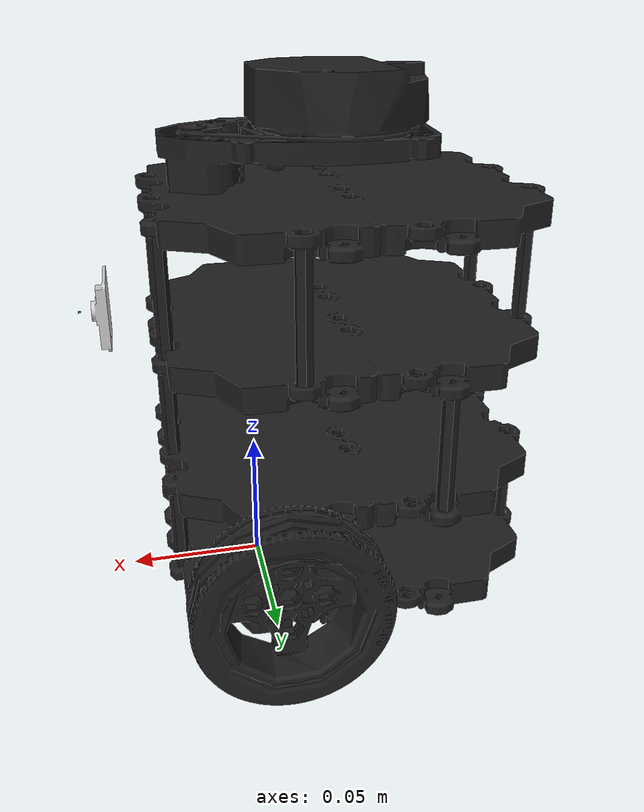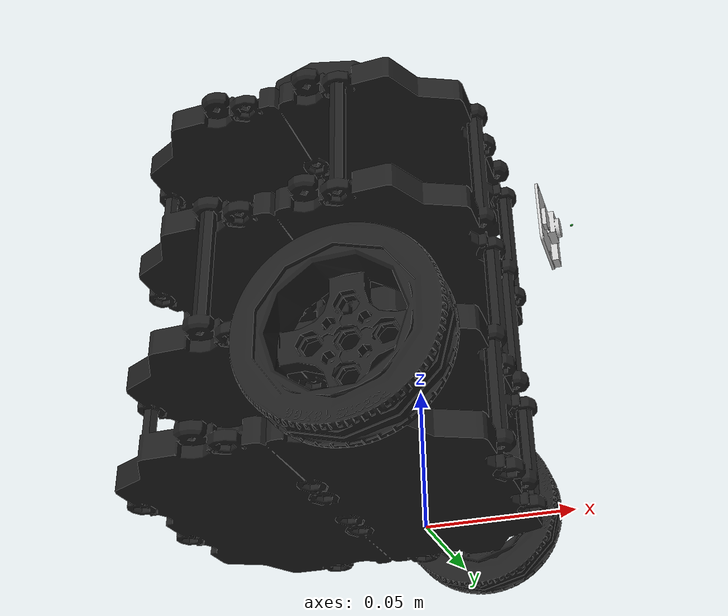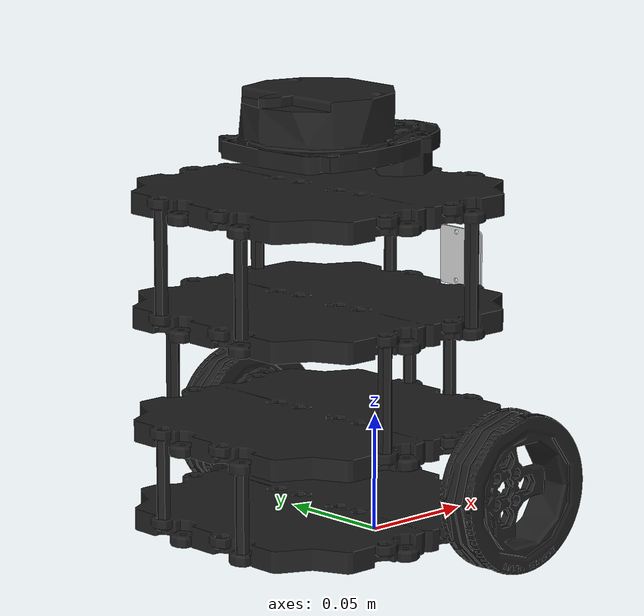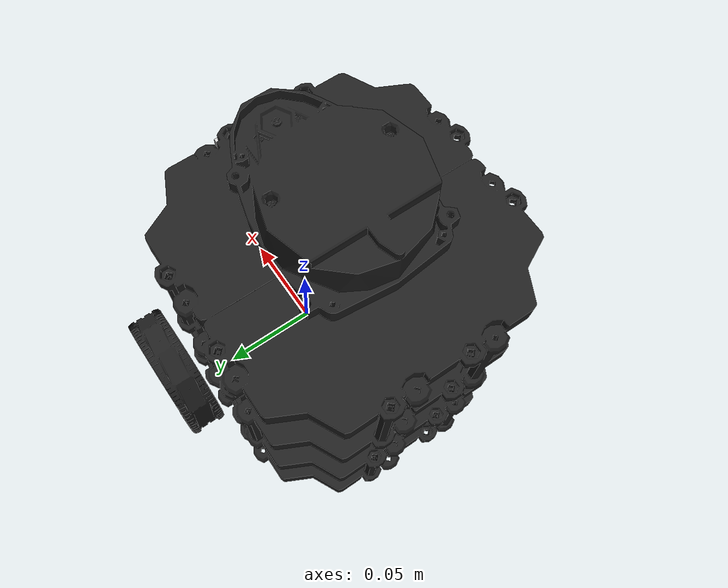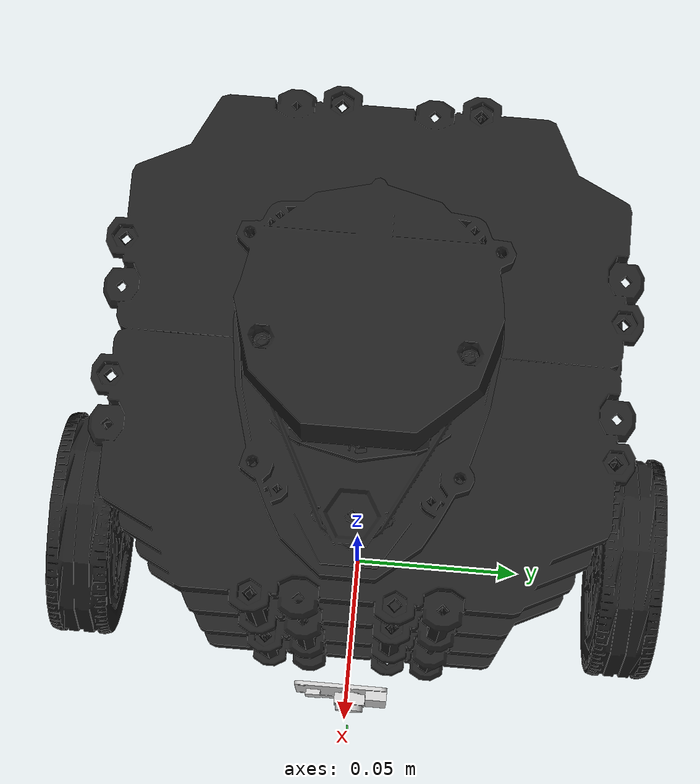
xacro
<?xml version="1.0" ?>
<robot name="turtlebot3_burger" xmlns:xacro="http://ros.org/wiki/xacro">
  <xacro:include filename="$(find turtlebot3_description)/urdf/common_properties.xacro"/>
  <xacro:include filename="$(find turtlebot3_description)/urdf/turtlebot3_burger.gazebo.xacro"/>

  <link name="base_footprint"/>

  <joint name="base_joint" type="fixed">
    <parent link="base_footprint"/>
    <child link="base_link"/>
    <origin xyz="0.0 0.0 0.010" rpy="0 0 0"/>
  </joint>

  <link name="base_link">
    <visual>
      <origin xyz="-0.032 0 0.0" rpy="0 0 0"/>
      <geometry>
        <mesh filename="package://turtlebot3_description/meshes/bases/burger_base.dae" scale="0.001 0.001 0.001"/>
      </geometry>
      <material name="light_black"/>
    </visual>

    <collision>
      <origin xyz="-0.032 0 0.070" rpy="0 0 0"/>
      <geometry>
        <box size="0.140 0.140 0.143"/>
      </geometry>
    </collision>

    <inertial>
      <origin xyz="0 0 0" rpy="0 0 0"/>
      <mass value="8.2573504e-01"/>
      <inertia ixx="2.2124416e-03" ixy="-1.2294101e-05" ixz="3.4938785e-05"
               iyy="2.1193702e-03" iyz="-5.0120904e-06"
               izz="2.0064271e-03" />
    </inertial>
  </link>

  <joint name="wheel_left_joint" type="continuous">
    <parent link="base_link"/>
    <child link="wheel_left_link"/>
    <origin xyz="0.0 0.08 0.023" rpy="-1.57 0 0"/>
    <axis xyz="0 0 1"/>
  </joint>

  <link name="wheel_left_link">
    <visual>
      <origin xyz="0 0 0" rpy="1.57 0 0"/>
      <geometry>
        <mesh filename="package://turtlebot3_description/meshes/wheels/left_tire.dae" scale="0.001 0.001 0.001"/>
      </geometry>
      <material name="dark"/>
    </visual>

    <collision>
      <origin xyz="0 0 0" rpy="0 0 0"/>
      <geometry>
        <cylinder length="0.018" radius="0.033"/>
      </geometry>
    </collision>

    <inertial>
      <origin xyz="0 0 0" />
      <mass value="2.8498940e-02" />
      <inertia ixx="1.1175580e-05" ixy="-4.2369783e-11" ixz="-5.9381719e-09"
               iyy="1.1192413e-05" iyz="-1.4400107e-11"
               izz="2.0712558e-05" />
      </inertial>
  </link>

  <joint name="wheel_right_joint" type="continuous">
    <parent link="base_link"/>
    <child link="wheel_right_link"/>
    <origin xyz="0.0 -0.080 0.023" rpy="-1.57 0 0"/>
    <axis xyz="0 0 1"/>
  </joint>

  <link name="wheel_right_link">
    <visual>
      <origin xyz="0 0 0" rpy="1.57 0 0"/>
      <geometry>
        <mesh filename="package://turtlebot3_description/meshes/wheels/right_tire.dae" scale="0.001 0.001 0.001"/>
      </geometry>
      <material name="dark"/>
    </visual>

    <collision>
      <origin xyz="0 0 0" rpy="0 0 0"/>
      <geometry>
        <cylinder length="0.018" radius="0.033"/>
      </geometry>
    </collision>

    <inertial>
      <origin xyz="0 0 0" />
      <mass value="2.8498940e-02" />
      <inertia ixx="1.1175580e-05" ixy="-4.2369783e-11" ixz="-5.9381719e-09"
               iyy="1.1192413e-05" iyz="-1.4400107e-11"
               izz="2.0712558e-05" />
      </inertial>
  </link>

  <joint name="caster_back_joint" type="fixed">
    <parent link="base_link"/>
    <child link="caster_back_link"/>
    <origin xyz="-0.081 0 -0.004" rpy="-1.57 0 0"/>
  </joint>

  <link name="caster_back_link">
    <collision>
      <origin xyz="0 0.001 0" rpy="0 0 0"/>
      <geometry>
        <box size="0.030 0.009 0.020"/>
      </geometry>
    </collision>

    <inertial>
      <origin xyz="0 0 0" />
      <mass value="0.005" />
      <inertia ixx="0.001" ixy="0.0" ixz="0.0"
               iyy="0.001" iyz="0.0"
               izz="0.001" />
    </inertial>
  </link>

  <joint name="imu_joint" type="fixed">
    <parent link="base_link"/>
    <child link="imu_link"/>
    <origin xyz="-0.032 0 0.068" rpy="0 0 0"/>
  </joint>

  <link name="imu_link"/>

  <joint name="scan_joint" type="fixed">
    <parent link="base_link"/>
    <child link="base_scan"/>
    <origin xyz="-0.032 0 0.172" rpy="0 0 0"/>
  </joint>

  <link name="base_scan">
    <visual>
      <origin xyz="0 0 0.0" rpy="0 0 0"/>
      <geometry>
        <mesh filename="package://turtlebot3_description/meshes/sensors/lds.dae" scale="0.001 0.001 0.001"/>
      </geometry>
      <material name="dark"/>
    </visual>

    <collision>
      <origin xyz="0.015 0 -0.0065" rpy="0 0 0"/>
      <geometry>
        <cylinder length="0.0315" radius="0.055"/>
      </geometry>
    </collision>

    <inertial>
      <mass value="0.114" />
      <origin xyz="0 0 0" />
      <inertia ixx="0.001" ixy="0.0" ixz="0.0"
               iyy="0.001" iyz="0.0"
               izz="0.001" />
    </inertial>
  </link>

  <!-- Camera -->
  <link name="camera_link">
        <visual>
            <geometry>
            <mesh filename="package://turtlebot3_description/meshes/sensors/rpi_camera_v2_short.dae"/>
            </geometry>
            <material name="camera_link_material">
            <color rgba="0.8 0.8 0.8 1.0"/>
            </material>
        </visual>
        <collision>
            <geometry>
            <mesh filename="package://turtlebot3_description/meshes/sensors/rpi_camera_v2_short.stl"/>
            </geometry>
        </collision>
        <inertial>
            <origin xyz="2.88715e-05 0.00248607 0.00813026" rpy="0 0 0"/>
            <mass value="0.00217711"/>
            <inertia ixx="2.12383e-07" ixy="6.03294e-10"  ixz="3.97667e-10" iyy="2.0411e-07" iyz="-1.46626e-09" izz="1.04162e-07" />
        </inertial>
    </link>

    <joint name="chassis_1_camera_link_fixing" type="fixed">
        <origin xyz="0.05 0.0 0.1" rpy="-1.57 0 0" />
        <parent link="base_link" />
        <child link="camera_link" />
        <axis xyz="0 0 0"/>
    </joint>

    <link name="camera_link_frame">
        <!-- Inertial for gazebo to take it into account, Put 1gr weight -->
        <inertial>
            <origin xyz="0 0 0" rpy="0 0 0"/>
            <mass value="0.001" />
            <inertia ixx="9.1875e-09" ixy="0.0" ixz="0.0" iyy="9.1875e-09" iyz="0.0" izz="1.378125e-08"/>
        </inertial>
        <visual>
            <origin rpy="0.0 0 0" xyz="0 0 0"/>
            <geometry>
                <box size="0.0010 0.0005 0.0005"/>
            </geometry>
            <material name="green"/>
        </visual>
    </link>

    <gazebo reference="camera_link_frame">
        <material>Gazebo/Green</material>
    </gazebo>

    <joint name="camera_frame_joint" type="fixed">
        <origin xyz="0.01 0.000001 0.002402" rpy="1.52 0 0" />
        <parent link="camera_link" />
        <child link="camera_link_frame" />
        <axis xyz="0 0 0"/>
    </joint>

    <gazebo reference="camera_link_frame">
        <sensor type="camera" name="cam">
        <update_rate>10.0</update_rate>
        <camera name="raspv2">

            <pose>0 0 0 0 0 0</pose>

            <horizontal_fov>1.3962634</horizontal_fov>
            <image>
            <width>640</width>
            <height>480</height>
            <format>R8G8B8</format>
            </image>
            <clip>
                <near>0.005</near>
                <far>20.0</far>
            </clip>
        </camera>
        <plugin name="camera_controller" filename="libgazebo_ros_camera.so">
            <alwaysOn>true</alwaysOn>
            <updateRate>0.0</updateRate>
            <cameraName>cv_camera</cameraName>
            <imageTopicName>image_raw</imageTopicName>
            <cameraInfoTopicName>camera_info</cameraInfoTopicName>
            <frameName>camera_link_frame</frameName>
            <hackBaseline>0.07</hackBaseline>
            <distortionK1>0.0</distortionK1>
            <distortionK2>0.0</distortionK2>
            <distortionK3>0.0</distortionK3>
            <distortionT1>0.0</distortionT1>
            <distortionT2>0.0</distortionT2>
        </plugin>
        </sensor>
    </gazebo>

</robot>
